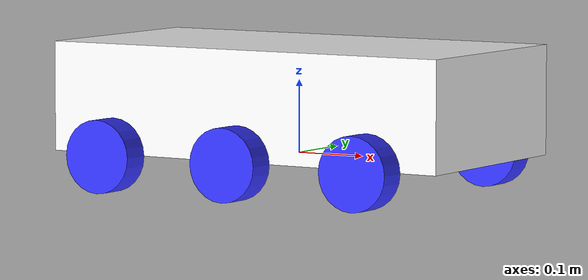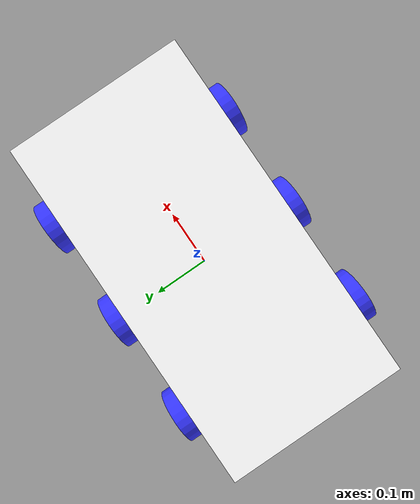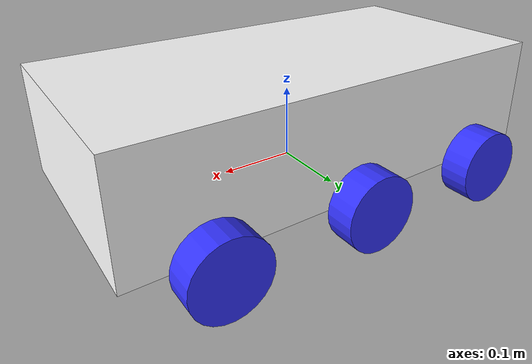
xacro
<?xml version="1.0"?>
<robot xmlns:xacro="http://www.ros.org/wiki/xacro" >

    <xacro:include filename="inertial_macros.xacro"/>

    <material name="white"><color rgba="1 1 1 1" /></material>
    <material name="blue"><color rgba="0.2 0.2 1 1"/></material>
    <material name="black"><color rgba="0 0 0 1"/></material>

    <!-- BASE LINK -->
    <link name="base_link"></link>

    <!-- CHASSIS LINK -->
    <joint name="chassis_joint" type="fixed">
        <parent link="base_link"/>
        <child link="chassis"/>
        <origin xyz="-0.3 0 0"/>
    </joint>

    <link name="chassis">
        <visual>
            <origin xyz="0.3 0 0.075"/>
            <geometry><box size="0.6 0.3 0.15"/></geometry>
            <material name="white"/>
        </visual>
        <collision>
            <origin xyz="0.3 0 0.075"/>
            <geometry><box size="0.6 0.3 0.15"/></geometry>
        </collision>
        <xacro:inertial_box mass="1.0" x="0.6" y="0.3" z="0.15">
            <origin xyz="0.3 0 0.075" rpy="0 0 0"/>
        </xacro:inertial_box>
    </link>

    <!-- Gazebo Harmonic uses simple visual tags for colors or Ogre materials -->
    <gazebo reference="chassis">
        <visual>
            <material>
                <ambient>1 1 1 1</ambient>
                <diffuse>1 1 1 1</diffuse>
                <specular>0.5 0.5 0.5 1</specular>
            </material>
        </visual>
    </gazebo>

    <!-- WHEEL MACRO -->
    <xacro:macro name="wheel" params="prefix y_reflect x_offset">
        <joint name="${prefix}_wheel_joint" type="continuous">
            <parent link="base_link"/>
            <child link="${prefix}_wheel"/>
            <origin xyz="${x_offset} ${y_reflect * 0.175} 0" rpy="${y_reflect * pi/2} 0 0" />
            <axis xyz="0 0 ${-y_reflect}"/>
        </joint>

        <link name="${prefix}_wheel">
            <visual>
                <geometry><cylinder radius="0.05" length="0.04"/></geometry>
                <material name="blue"/>
            </visual>
            <collision>
                <geometry><cylinder radius="0.05" length="0.04"/></geometry>
            </collision>
            <xacro:inertial_cylinder mass="0.1" length="0.04" radius="0.05">
                <origin xyz="0 0 0" rpy="0 0 0"/>
            </xacro:inertial_cylinder>
        </link>

        <gazebo reference="${prefix}_wheel">
            <visual>
                <material>
                    <ambient>0.2 0.2 1 1</ambient>
                    <diffuse>0.2 0.2 1 1</diffuse>
                </material>
            </visual>
            <!-- Friction values are important in Sim -->
            <mu1 value="0.2"/>
            <mu2 value="0.2"/>
        </gazebo>
    </xacro:macro>

    <xacro:wheel prefix="left_front"  y_reflect="1"  x_offset="0.2"/>
    <xacro:wheel prefix="left_middle" y_reflect="1"  x_offset="0.0"/>
    <xacro:wheel prefix="left_back"   y_reflect="1"  x_offset="-0.2"/>
    <xacro:wheel prefix="right_front"  y_reflect="-1" x_offset="0.2"/>
    <xacro:wheel prefix="right_middle" y_reflect="-1" x_offset="0.0"/>
    <xacro:wheel prefix="right_back"   y_reflect="-1" x_offset="-0.2"/>

</robot>
